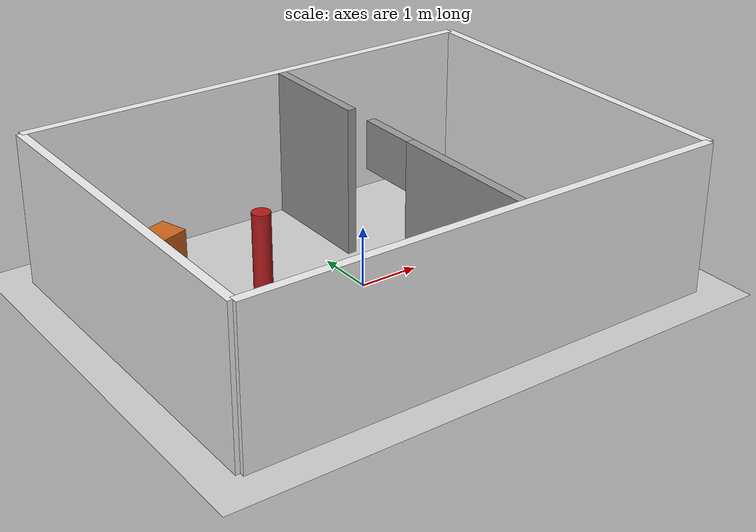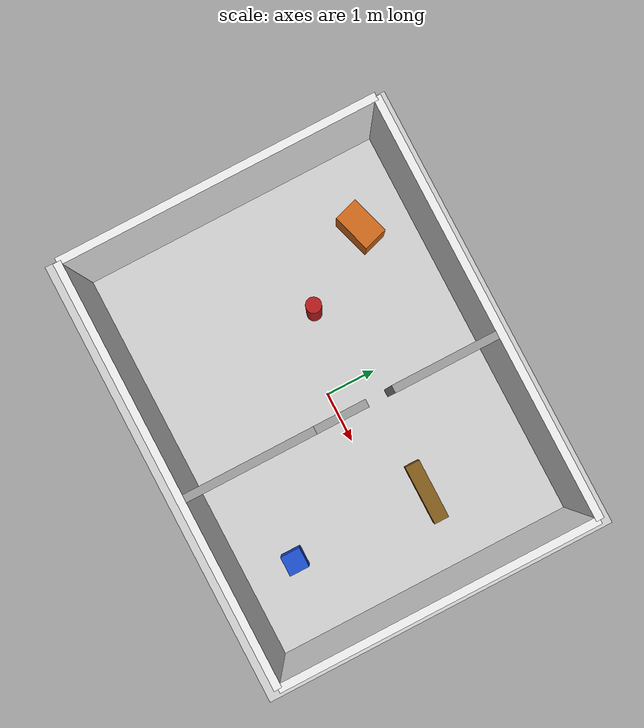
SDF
<?xml version="1.0"?>
<sdf version="1.6">
  <world name="indoor_simple">

    <!-- ========== 物理引擎参数 ========== -->
    <physics name="default_physics" default="true" type="ode">
      <real_time_update_rate>1000</real_time_update_rate>
      <max_step_size>0.001</max_step_size>
      <real_time_factor>1</real_time_factor>
    </physics>

    <!-- ========== 光源 ========== -->
    <light name="ceiling_light" type="point">
      <pose>0 0 4 0 0 0</pose>
      <diffuse>0.9 0.9 0.9 1</diffuse>
      <specular>0.1 0.1 0.1 1</specular>
      <attenuation>
        <range>20</range><constant>0.5</constant>
        <linear>0.01</linear><quadratic>0.001</quadratic>
      </attenuation>
      <cast_shadows>false</cast_shadows>
    </light>
    <light name="sun" type="directional">
      <cast_shadows>false</cast_shadows>
      <pose>0 0 10 0 0 0</pose>
      <diffuse>0.5 0.5 0.5 1</diffuse>
      <specular>0.1 0.1 0.1 1</specular>
      <direction>0 0 -1</direction>
    </light>

    <!-- ========== 地面 ========== -->
    <model name="ground_plane">
      <static>true</static>
      <link name="link">
        <collision name="collision">
          <geometry><plane><normal>0 0 1</normal><size>20 20</size></plane></geometry>
          <surface><friction><ode><mu>1.0</mu><mu2>1.0</mu2></ode></friction></surface>
        </collision>
        <visual name="visual">
          <geometry><plane><normal>0 0 1</normal><size>20 20</size></plane></geometry>
          <material><script>
            <uri>file://media/materials/scripts/gazebo.material</uri>
            <name>Gazebo/Floor</name>
          </script></material>
        </visual>
      </link>
    </model>

    <!-- ================================================================
         外墙: 8m(x) × 6m(y), 中心在原点, 墙高2.5m, 厚0.15m
         ================================================================ -->
    <!-- 北墙 -->
    <model name="wall_north">
      <static>true</static>
      <pose>0 3.075 1.25 0 0 0</pose>
      <link name="link">
        <collision name="c"><geometry><box><size>8.15 0.15 2.5</size></box></geometry></collision>
        <visual name="v"><geometry><box><size>8.15 0.15 2.5</size></box></geometry>
          <material><script><uri>file://media/materials/scripts/gazebo.material</uri>
            <name>Gazebo/White</name></script></material>
        </visual>
      </link>
    </model>
    <!-- 南墙 -->
    <model name="wall_south">
      <static>true</static>
      <pose>0 -3.075 1.25 0 0 0</pose>
      <link name="link">
        <collision name="c"><geometry><box><size>8.15 0.15 2.5</size></box></geometry></collision>
        <visual name="v"><geometry><box><size>8.15 0.15 2.5</size></box></geometry>
          <material><script><uri>file://media/materials/scripts/gazebo.material</uri>
            <name>Gazebo/White</name></script></material>
        </visual>
      </link>
    </model>
    <!-- 东墙 -->
    <model name="wall_east">
      <static>true</static>
      <pose>4.075 0 1.25 0 0 0</pose>
      <link name="link">
        <collision name="c"><geometry><box><size>0.15 6.15 2.5</size></box></geometry></collision>
        <visual name="v"><geometry><box><size>0.15 6.15 2.5</size></box></geometry>
          <material><script><uri>file://media/materials/scripts/gazebo.material</uri>
            <name>Gazebo/White</name></script></material>
        </visual>
      </link>
    </model>
    <!-- 西墙 -->
    <model name="wall_west">
      <static>true</static>
      <pose>-4.075 0 1.25 0 0 0</pose>
      <link name="link">
        <collision name="c"><geometry><box><size>0.15 6.15 2.5</size></box></geometry></collision>
        <visual name="v"><geometry><box><size>0.15 6.15 2.5</size></box></geometry>
          <material><script><uri>file://media/materials/scripts/gazebo.material</uri>
            <name>Gazebo/White</name></script></material>
        </visual>
      </link>
    </model>

    <!-- ================================================================
         内墙隔断: x=0.5 纵向隔墙, 在 y=[-0.5, 0.5] 留1m宽门洞
         ================================================================ -->
    <!-- 内墙北段 -->
    <model name="inner_wall_north">
      <static>true</static>
      <pose>0.5 2.0 1.25 0 0 0</pose>
      <link name="link">
        <collision name="c"><geometry><box><size>0.15 2.0 2.5</size></box></geometry></collision>
        <visual name="v"><geometry><box><size>0.15 2.0 2.5</size></box></geometry>
          <material><script><uri>file://media/materials/scripts/gazebo.material</uri>
            <name>Gazebo/Grey</name></script></material>
        </visual>
      </link>
    </model>
    <!-- 内墙南段 -->
    <model name="inner_wall_south">
      <static>true</static>
      <pose>0.5 -1.75 1.25 0 0 0</pose>
      <link name="link">
        <collision name="c"><geometry><box><size>0.15 2.5 2.5</size></box></geometry></collision>
        <visual name="v"><geometry><box><size>0.15 2.5 2.5</size></box></geometry>
          <material><script><uri>file://media/materials/scripts/gazebo.material</uri>
            <name>Gazebo/Grey</name></script></material>
        </visual>
      </link>
    </model>
    <!-- 门洞过梁 -->
    <model name="door_lintel">
      <static>true</static>
      <pose>0.5 0.0 2.1 0 0 0</pose>
      <link name="link">
        <collision name="c"><geometry><box><size>0.15 1.0 0.8</size></box></geometry></collision>
        <visual name="v"><geometry><box><size>0.15 1.0 0.8</size></box></geometry>
          <material><script><uri>file://media/materials/scripts/gazebo.material</uri>
            <name>Gazebo/Grey</name></script></material>
        </visual>
      </link>
    </model>

    <!-- ================================================================
         障碍物
         ================================================================ -->
    <!-- 大箱子: 西北角 -->
    <model name="box_large">
      <static>true</static>
      <pose>-2.5 2.0 0.4 0 0 0.3</pose>
      <link name="link">
        <collision name="c"><geometry><box><size>0.8 0.5 0.8</size></box></geometry></collision>
        <visual name="v"><geometry><box><size>0.8 0.5 0.8</size></box></geometry>
          <material><ambient>0.8 0.4 0.1 1</ambient><diffuse>0.8 0.4 0.1 1</diffuse></material>
        </visual>
      </link>
    </model>
    <!-- 小箱子: 东南 -->
    <model name="box_small">
      <static>true</static>
      <pose>2.5 -2.0 0.25 0 0 0</pose>
      <link name="link">
        <collision name="c"><geometry><box><size>0.4 0.4 0.5</size></box></geometry></collision>
        <visual name="v"><geometry><box><size>0.4 0.4 0.5</size></box></geometry>
          <material><ambient>0.1 0.3 0.8 1</ambient><diffuse>0.1 0.3 0.8 1</diffuse></material>
        </visual>
      </link>
    </model>
    <!-- 圆柱障碍: 西侧走廊 -->
    <model name="cylinder_pillar">
      <static>true</static>
      <pose>-1.5 0.5 0.75 0 0 0</pose>
      <link name="link">
        <collision name="c"><geometry><cylinder><radius>0.15</radius><length>1.5</length></cylinder></geometry></collision>
        <visual name="v"><geometry><cylinder><radius>0.15</radius><length>1.5</length></cylinder></geometry>
          <material><ambient>0.7 0.1 0.1 1</ambient><diffuse>0.7 0.1 0.1 1</diffuse></material>
        </visual>
      </link>
    </model>
    <!-- 长条障碍: 东侧 -->
    <model name="bench">
      <static>true</static>
      <pose>2.5 0.8 0.2 0 0 0</pose>
      <link name="link">
        <collision name="c"><geometry><box><size>1.2 0.3 0.4</size></box></geometry></collision>
        <visual name="v"><geometry><box><size>1.2 0.3 0.4</size></box></geometry>
          <material><ambient>0.5 0.35 0.1 1</ambient><diffuse>0.5 0.35 0.1 1</diffuse></material>
        </visual>
      </link>
    </model>

    <!-- ========== 场景设置 ========== -->
    <scene>
      <ambient>0.4 0.4 0.4 1</ambient>
      <background>0.7 0.7 0.7 1</background>
      <shadows>false</shadows>
    </scene>

    <!-- GUI 初始视角 (俯视45°) -->
    <gui fullscreen="0">
      <camera name="user_camera">
        <pose>-2 -8 6 0 0.6 1.57</pose>
        <view_controller>orbit</view_controller>
      </camera>
    </gui>
  </world>
</sdf>
